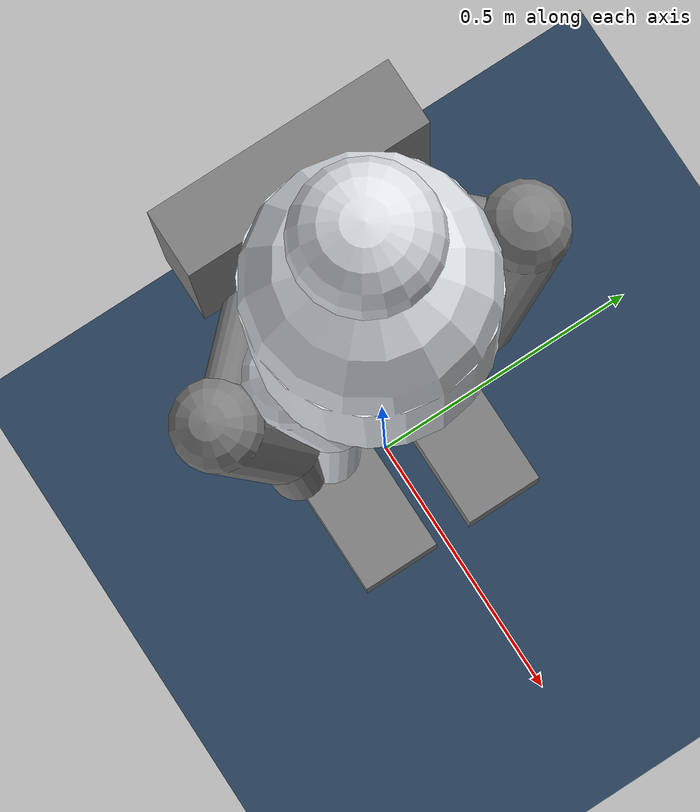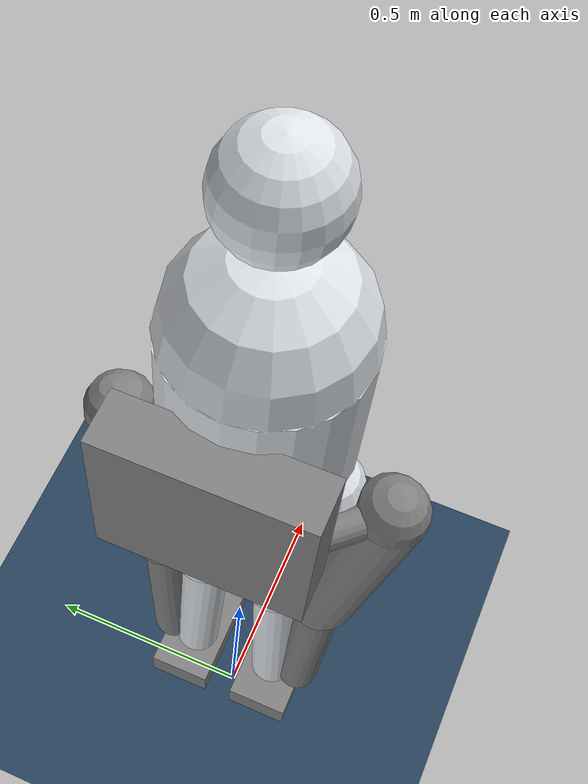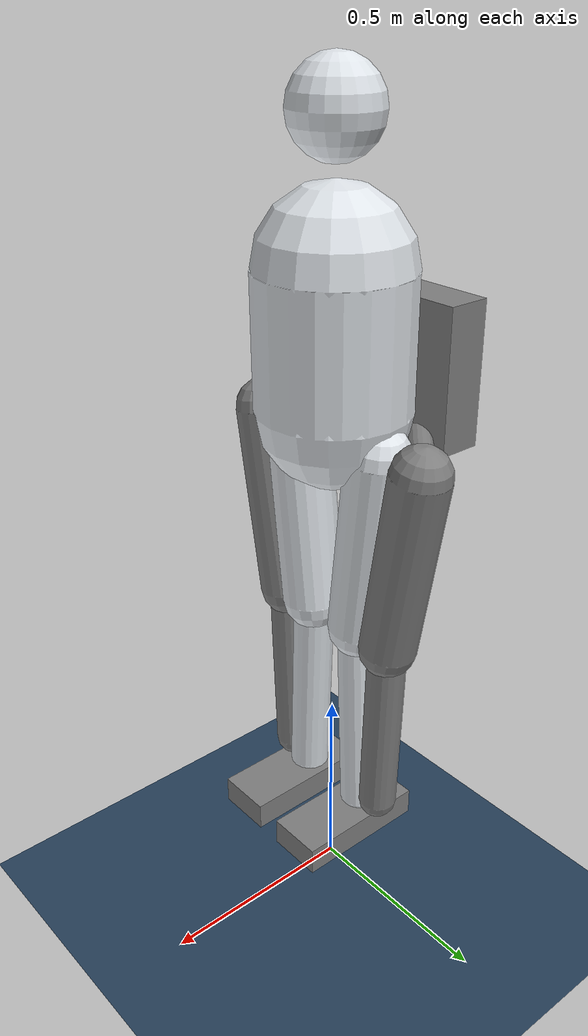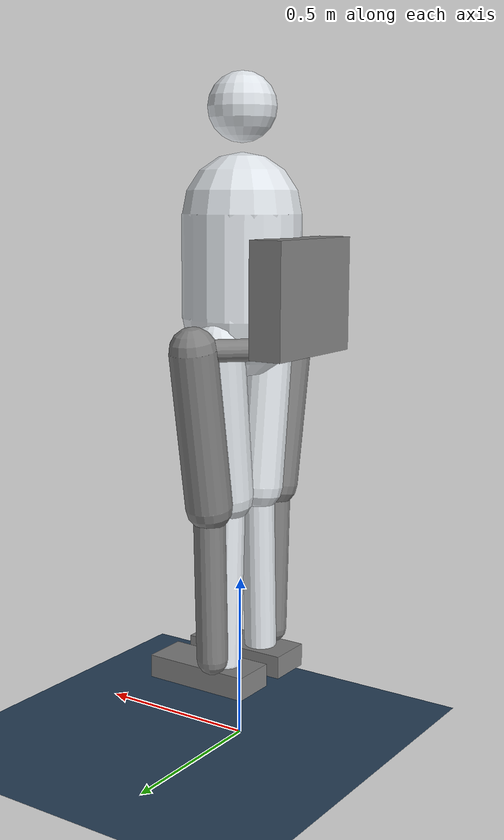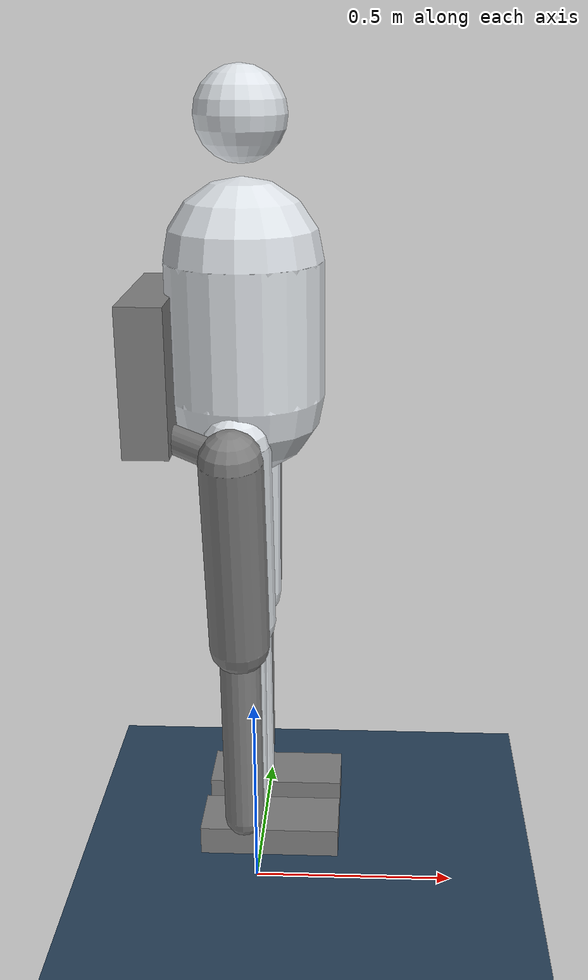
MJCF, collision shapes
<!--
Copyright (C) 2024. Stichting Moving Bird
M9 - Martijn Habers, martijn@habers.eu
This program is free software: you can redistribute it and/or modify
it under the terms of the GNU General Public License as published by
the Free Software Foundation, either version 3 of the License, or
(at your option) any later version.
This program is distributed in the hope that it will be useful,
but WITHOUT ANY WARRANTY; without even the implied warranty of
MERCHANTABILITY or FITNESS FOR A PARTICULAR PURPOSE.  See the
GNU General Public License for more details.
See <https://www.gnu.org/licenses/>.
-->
<mujoco model="exoskeleton">
  <compiler meshdir="obj-files" angle="degree" autolimits="true"/>
  <size nuser_actuator='1' nuser_sensor='1' nuser_geom='1'/>
  <option timestep='0.01' iterations='50' solver='PGS' gravity='0 0 -9.81'>
  </option>

  <asset>
    <texture type="skybox" builtin="gradient" rgb1=".3 .5 .7" rgb2="0 0 0" width="512" height="512"/>
    <texture name="body" type="cube" builtin="flat" mark="cross" width="127" height="1278"
             rgb1="0.8 0.6 0.4" rgb2="0.8 0.6 0.4" markrgb="1 1 1" random="0.01"/>
    <texture name="grid" type="2d" builtin="checker" width="512" height="512" rgb1=".1 .2 .3" rgb2=".2 .3 .4"/>
    <material name="grid" texture="grid" texrepeat="1 1" texuniform="true" reflectance=".2"/>
    <material name="march_grey" rgba=".87 .89 .91 1"/>
    <material name="collision" rgba="1 0 0 1"/>

    <mesh name="backpack"    file="Backpack.obj"/>
    <mesh name="L_Ankle"     file="L_Ankle.obj"/>
    <mesh name="L_Hip"       file="L_Hip.obj"/>
    <mesh name="L_UpperLeg"  file="L_UpperLeg.obj"/>
    <mesh name="L_LowerLeg"  file="L_LowerLeg.obj"/>
    <mesh name="L_Sole"      file="L_Sole.obj"/>

    <mesh name="R_Ankle"     scale="1 -1 1"    file="L_Ankle.obj"/>
    <mesh name="R_Hip"       scale="1 -1 1"    file="L_Hip.obj"/>
    <mesh name="R_UpperLeg"  scale="1 -1 1"    file="L_UpperLeg.obj"/>
    <mesh name="R_LowerLeg"  scale="1 -1 1"    file="L_LowerLeg.obj"/>
    <mesh name="R_Sole"      scale="1 -1 1"    file="L_Sole.obj"/>
  </asset>

  <default>
    <site group="5"/>
    <motor ctrlrange="-1 1" ctrllimited="true"/>
    <geom contype="0" conaffinity="0" condim="1" solref="0.005 1"/>
    <equality solref="0.005 1"/>
    <default class="exoskeleton">
      <geom material="march_grey" group="2"/>
    </default>
    <default class="collision">
      <geom contype="1" group="3" type="capsule"/>
      <default class="L_collision">
        <geom contype="2" conaffinity="4"/>
      </default>
      <default class="R_collision">
        <geom contype="4" conaffinity="2"/>
      </default>
    </default>
    <default class="HAA_joint">
      <joint damping="107.692308"
              armature="5.4"
             frictionloss="0" stiffness="0"/>
    </default>
    <default class="ADPF_joint">
      <joint damping="43.658537"
              armature="2.2"
             frictionloss="0" stiffness="0"/>
    </default>
    <default class="rotational_joint">
      <joint damping="63.451777"
              armature="9.98"
             frictionloss="0" stiffness="0"/>
    </default>
  </default>
  <default class="AIE_joint">
    <joint damping="0"
            armature="0"
           frictionloss="0" stiffness="0"/>
  </default>

  <visual>
    <map force="0.1" zfar="30"/>
    <rgba haze="0.15 0.25 0.35 1"/>
    <quality shadowsize="4096"/>
    <global offwidth="800" offheight="800"/>
  </visual>

  <worldbody>
    <geom name="floor" size="0 0 .05" type="plane" material="grid" conaffinity="15" condim="3"/>
    <light name="spotlight" mode="targetbodycom" target="backpack"
           diffuse=".8 .8 .8" specular="0.3 0.3 0.3" pos="0 -20 4" cutoff="10"/>

    <!-- box to sit at startup -->

    <body name="safety_catcher" pos="-0.2 0 1.2">
      <inertial pos="0 0 0" mass="0.1" diaginertia="10 10 10"/>

      <body name="backpack" pos="0 0 0" childclass="exoskeleton">
        <light name="top" pos="0 0 2" mode="trackcom"/>
        <camera name="diag" pos="3 -2.5 1" xyaxes="1 1 0 0 1 2" mode="track"/>
        <camera name="right" pos="0 -3 1" xyaxes="1 0 0 0 1 2" mode="track"/>
        <site name='imu_backpack' size='0.01' pos="0 0 0"/>

        <inertial pos="0.2 -0.026 0.294" mass="64.559"
                  fullinertia="3.9893	3.7436	1.5564	0.0529	-0.3975	0.0803"/>
        <geom type="mesh" mesh="backpack" />
        <geom name="backpack" type="box"
              size="0.051 0.189 0.165"
              pos="0 0 0.17" class="collision"/>

        <site name="imu_torso" size='0.01' pos="0.2 0 0.4"/>
        <!-- torso capsule -->
        <body><geom type="capsule" fromto="0.2 0 0.1 0.2 0 0.4" size="0.175"/></body>
        <!-- head sphere -->
        <body><geom type="sphere" size="0.1" pos="0.2 0 0.7"/></body>
        <!--  LEFT LEG -->
        <body name="L_hip" pos="0.021 0.081 0.028">
          <inertial
            mass="3.684"
            pos="0.130 0.174 0.000"
            fullinertia="0.0146 0.0255 0.0321 -0.0106 0.0000 0.000"/>
          <joint name="left_hip_aa" axis="-1 0 0" range="-20 10" class="HAA_joint" />
          <geom type="mesh" mesh="L_Hip" />
          <geom name="L_hip" fromto="0 0 0 0.169 0.176 0"
            size="0.032" class="L_collision"/>
          <site name="tor_L_HAA" size="0.01" pos="0 0 0"/>

          <body name="L_UL" pos="0.169 0.176 0">
            <inertial
              mass="12.791"
              pos="0.003 -0.140 -0.243"
              fullinertia="0.4303	0.3727 0.1035 0.0057 0.0317 -0.0947"/>
            <joint name="left_hip_fe" axis="0 -1 0" range="-20 115" class="rotational_joint" />
            <geom type="mesh" mesh="L_UpperLeg"/>
            <geom name="L_UL" fromto="0 0 0 0 -0.077 -0.463"
              size="0.069" class="L_collision"/>
            <site name="tor_L_HFE" size="0.01" pos="0 0 0"/>
            <body>
            <geom type="capsule" fromto="0 -0.125 0 0 -0.175 -0.45" size="0.075"/>

            <body name="L_LL" pos="0 -0.077 -0.463">
              <inertial
                mass="5.796"
                pos="-0.029	-0.043 -0.278"
                fullinertia="0.1082 0.1066 0.0294 0.0054 -0.0138 0.0050"/>
              <joint name="left_knee" axis="0 1 0" range="0 125" class="rotational_joint" />
              <geom type="mesh" mesh="L_LowerLeg"/>
              <site name="tor_L_KFE" size="0.01" pos="0 0 0"/>
              <geom name="L_LL" fromto="0 0 0 0.000 -0.016 -0.469"
                size="0.047" class="L_collision"/>
            <body>
            <geom type="capsule" fromto="0 -0.1 0 0 -0.08 -0.5" size="0.05"/>
            </body>
              <body name="L_ankle" pos="0.000 -0.016 -0.469">
                <inertial
                  mass="0.683"
                  pos="0.070 0.043 -0.002"
                  fullinertia="0.0011 0.0043 0.0047 -0.0010 -0.0006 -0.0003"/>
                <joint name="left_ankle_dpf" axis="0 -1 0" range="-28 20" class="ADPF_joint"/>
                <geom type="mesh" mesh="L_Ankle"/>
                <site name="tor_L_ADPF" size="0.01" pos="0 0 0"/>

                <body name="L_foot" pos="-0.093 -0.061 -0.025">
                  <inertial
                    mass="2.128"
                    pos="0.117 -0.002 -0.031"
                    fullinertia="0.0042 0.0220 0.0217 0.0003 0.0008 0.0001"/>
                  <joint name="left_ankle_ie" axis="1 0 0" range="-9 9" class="AIE_joint"/>
                  <geom type="mesh" mesh="L_Sole"/>
                  <site name="tor_L_AIE" size="0.01" pos="0 0 0"/>

                  <geom name="L_foot" type="box" size="0.166 0.07 0.035"
                      pos="0.151 0 -.045"  class="L_collision"
                      friction="3.0"/>
                <body><geom type="box" pos="0.151 0 -.045" size="0.15 0.04 0.02"/></body>

</body>
                </body>
              </body>
            </body>
          </body>
        </body>

        <!--  RIGHT LEG -->
        <body name="R_hip" pos="0.021 -0.081 0.028">
          <inertial
              mass="3.684"
              pos="0.130 -0.174 0.000"
              fullinertia="0.0146 0.0255 0.0321 0.0106 0.000 0.000"/>
          <joint name="right_hip_aa" axis="1 0 0" range="-20 10" class="HAA_joint" />
          <geom type="mesh" mesh="R_Hip" />
          <geom name="R_hip" fromto="0 0 0 0.169 -0.176 0"
            size="0.032" class="R_collision"/>
          <site name="tor_R_HAA" size="0.01" pos="0 0 0"/>

          <body name="R_UL" pos="0.169 -0.176 0">
            <inertial
              mass="12.791"
              pos="0.003 0.140 -0.243"
              fullinertia="0.4303 0.3727 0.1035 -0.0057 0.0317 0.0947"/>
            <joint name="right_hip_fe" axis="0 -1 0" range="-20 115" class="rotational_joint" />
            <geom type="mesh" mesh="R_UpperLeg"/>
            <geom name="R_UL" fromto="0 0 0 0 0.077 -0.463"
              size="0.069" class="R_collision"/>
            <site name="tor_R_HFE" size="0.01" pos="0 0 0"/>
            <body>
            <geom type="capsule" fromto="0 0.125 0 0 0.175 -0.45" size="0.075"/>
            </body>
            <body name="R_LL" pos="0 0.077 -0.463">
              <inertial
                mass="5.796"
                pos="-0.029	0.043	-0.278"
                fullinertia="0.1082 0.1066 0.0294 -0.0054 -0.0138 -0.0050"/>
              <joint name="right_knee" axis="0 1 0" range="0 125" class="rotational_joint" />
              <geom type="mesh" mesh="R_LowerLeg"/>
              <geom name="R_LL" fromto="0 0 0 0.000 0.016 -0.469"
                size="0.047" class="R_collision"/>
              <site name="tor_R_KFE" size="0.01" pos="0 0 0"/>
              <body>
            <geom type="capsule" fromto="0 0.1 0 0 0.08 -0.5" size="0.05"/>
            </body>
              <body name="R_ankle" pos="0.000 0.016 -0.469">
                <inertial
                  mass="0.683"
                  pos="0.070 -0.043 -0.002"
                  fullinertia="0.0011 0.0043 0.0047 0.0010 -0.0006 0.0003"/>
                <joint name="right_ankle_dpf" axis="0 -1 0" range="-28 20" class="ADPF_joint"/>
                <geom type="mesh" mesh="R_Ankle"/>
                <site name="tor_R_ADPF" size="0.01" pos="0 0 0"/>

                <body name="R_foot" pos="-0.093 0.061 -0.025">
                  <inertial
                    mass="2.128"
                    pos="0.117	0.002	-0.031"
                    fullinertia="0.0042 0.0220 0.0217 -0.0003 0.0008 -0.0001"/>
                  <joint name="right_ankle_ie" axis="-1 0 0" range="-9 9" class="AIE_joint"/>
                  <geom type="mesh" mesh="R_Sole"/>
                  <site name="tor_R_AIE" size="0.01" pos="0 0 0"/>

                  <geom name="R_foot" type="box" size="0.166 0.07 0.035"
                    pos="0.151 0 -.045" class="R_collision"
                    friction="3.0"/>
                <!-- capsule foot -->
                <body><geom type="box" pos="0.151 0 -.045" size="0.15 0.04 0.02"/></body>
                </body>
              </body>
            </body>
          </body>
        </body>
      </body>
    </body>
  </worldbody>

  <actuator>
    <!-- User parameter is the maximum no-load motor RPM -->
    <motor name="left_ankle_dpf"    gear="179"  joint="left_ankle_dpf" forcerange="-3.8 3.8"/>
    <motor name="left_hip_aa"     gear="280"  joint="left_hip_aa" forcerange="-3.8 3.8"/>
    <motor name="left_hip_fe"     gear="250" joint="left_hip_fe" forcerange="-3.8 3.8"/>
    <motor name="left_knee"     gear="250"  joint="left_knee" forcerange="-3.8 3.8"/>
    <motor name="right_ankle_dpf"    gear="179"  joint="right_ankle_dpf" forcerange="-3.8 3.8"/>
    <motor name="right_hip_aa"     gear="280"  joint="right_hip_aa" forcerange="-3.8 3.8"/>
    <motor name="right_hip_fe"     gear="250" joint="right_hip_fe" forcerange="-3.8 3.8"/>
    <motor name="right_knee"     gear="250"  joint="right_knee" forcerange="-3.8 3.8"/>
  </actuator>

  <sensor>
    <!-- User parameter is the number of absolute encoder bits -->
    <!-- encodersoutput position; connected to the actuator -->
    <jointpos name="L_ADPF_pos_output" joint="left_ankle_dpf" user="18" noise="000"/>
    <jointpos name="L_AIE_pos_output" joint="left_ankle_ie" user="18" noise="000"/>
    <jointpos name="L_HAA_pos_output" joint="left_hip_aa" user="18" noise="000"/>
    <jointpos name="L_HFE_pos_output" joint="left_hip_fe" user="18" noise="000"/>
    <jointpos name="L_KFE_pos_output" joint="left_knee" user="18" noise="000"/>
    <jointpos name="R_ADPF_output" joint="right_ankle_dpf" user="18" noise="000"/>
    <jointpos name="R_AIE_output" joint="right_ankle_ie" user="18" noise="000"/>
    <jointpos name="R_HAA_output" joint="right_hip_aa" user="18" noise="000"/>
    <jointpos name="R_HFE_output" joint="right_hip_fe" user="18" noise="000"/>
    <jointpos name="R_KFE_output" joint="right_knee" user="18" noise="000"/>
    <!-- encodersoutput velocity; connected to the actuator -->
    <jointvel name="L_ADPF_vel_output" joint="left_ankle_dpf" user="18" noise="000"/>
    <jointvel name="L_AIE_vel_output" joint="left_ankle_ie" user="18" noise="000"/>
    <jointvel name="L_HAA_vel_output" joint="left_hip_aa" user="18" noise="000"/>
    <jointvel name="L_HFE_vel_output" joint="left_hip_fe" user="18" noise="000"/>
    <jointvel name="L_KFE_vel_output" joint="left_knee" user="18" noise="000"/>
    <jointvel name="R_ADPF_vel_output" joint="right_ankle_dpf" user="18" noise="000"/>
    <jointvel name="R_AIE_vel_output" joint="right_ankle_ie" user="18" noise="000"/>
    <jointvel name="R_HAA_vel_output" joint="right_hip_aa" user="18" noise="000"/>
    <jointvel name="R_HFE_vel_output" joint="right_hip_fe" user="18" noise="000"/>
    <jointvel name="R_KFE_vel_output" joint="right_knee" user="18" noise="000"/>
    <!-- torque sensors; connected to the actuator-->

<!--    TODO: This could also be of the type actuatorvel -->
    <torque name="L_ADPF_tor_output" site="tor_L_ADPF" user="13" noise="000"/>
    <torque name="L_AIE_tor_output" site="tor_L_AIE" user="13" noise="000"/>
    <torque name="L_HAA_tor_output" site="tor_L_HAA" user="13" noise="000"/>
    <torque name="L_HFE_tor_output" site="tor_L_HFE" user="13" noise="000"/>
    <torque name="L_KFE_tor_output" site="tor_L_KFE" user="13" noise="000"/>
    <torque name="R_ADPF_tor_output" site="tor_R_ADPF" user="13" noise="000"/>
    <torque name="R_AIE_tor_output" site="tor_R_AIE" user="13" noise="000"/>
    <torque name="R_HAA_tor_output" site="tor_R_HAA" user="13" noise="000"/>
    <torque name="R_HFE_tor_output" site="tor_R_HFE" user="13" noise="000"/>
    <torque name="R_KFE_tor_output" site="tor_R_KFE" user="13" noise="000"/>

    <!-- Noise & cutoff must be determined -->
    <framepos name='backpack_position' objtype='site' objname='imu_backpack'/>
    <framelinvel name='backpack_velocity' objtype='site' objname='imu_backpack'/>
    <framequat name='backpack_orientation' objtype='site' objname='imu_backpack'/>
    <gyro name='vel_imu_backpack' site='imu_backpack' noise='5e-4' cutoff='34.9'/>
    <accelerometer name='acc_imu_backpack' site='imu_backpack' noise='1e-5' cutoff='157'/>
    <magnetometer name='magnet_imu_backpack' site='imu_backpack'/>

    <framequat name='torso_orientation' objtype='site' objname='imu_torso'/>
    <gyro name='vel_imu_torso' site='imu_torso' noise='5e-4' cutoff='34.9'/>
    <accelerometer name='acc_imu_torso' site='imu_torso' noise='1e-5' cutoff='157'/>
    <magnetometer name='magnet_imu_torso' site='imu_torso'/>

  </sensor>

</mujoco>
